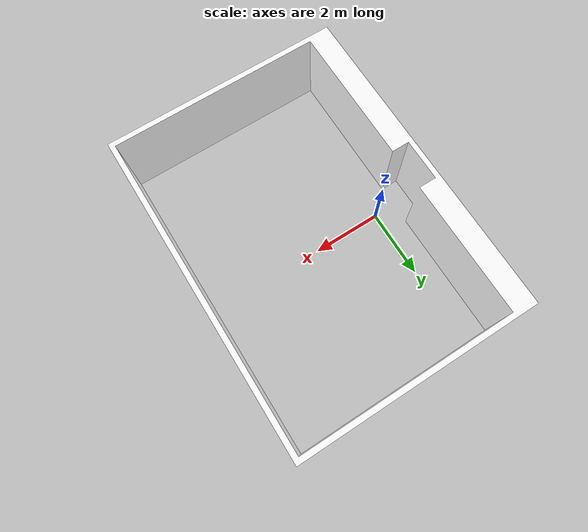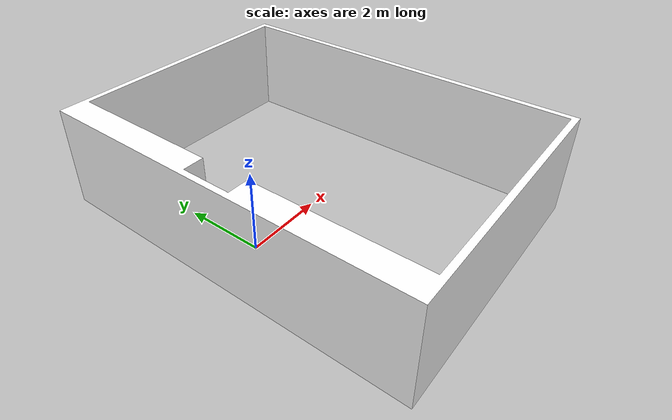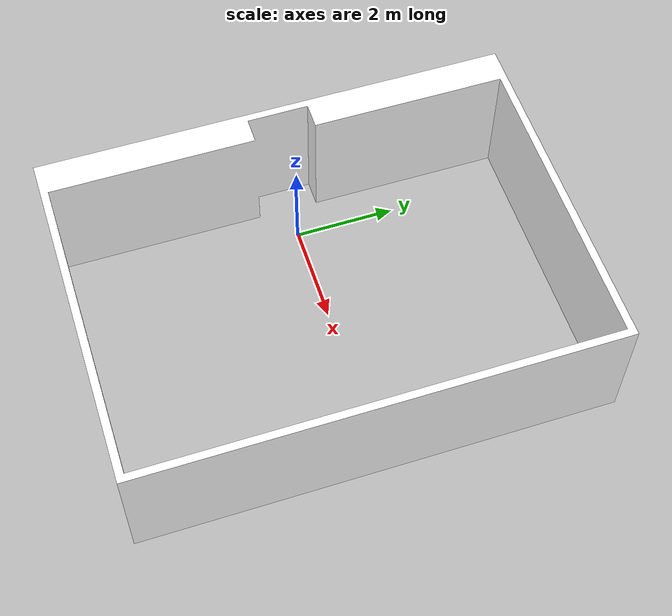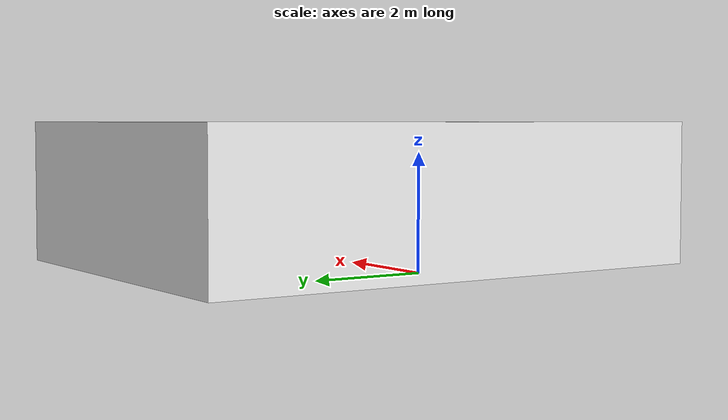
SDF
<?xml version="1.0" ?>
<sdf version="1.5">
  <model name="rococolab">
    <link name="link">
      <pose>0 0 0 0 0 0</pose>
      <collision name="collision">
        <geometry>
          <mesh>
            <uri>model://rococolab/meshes/walls.dae</uri>
          </mesh>
        </geometry>
      </collision>
      <visual name="visual">
        <geometry>
          <mesh>
            <uri>model://rococolab/meshes/walls.dae</uri>
          </mesh>
        </geometry>
      </visual>
    </link>
    <static>1</static>
  </model>
</sdf>
